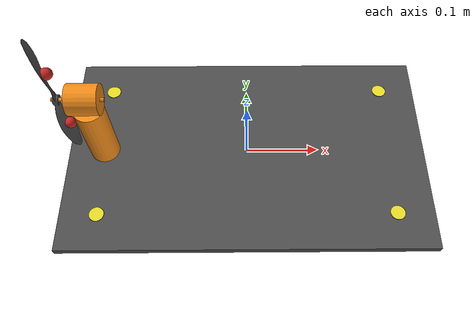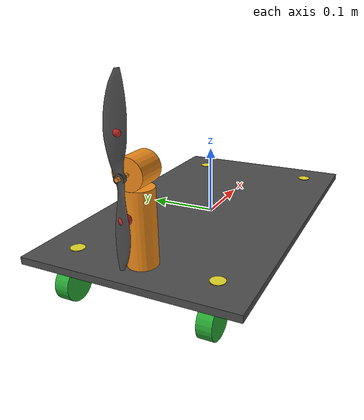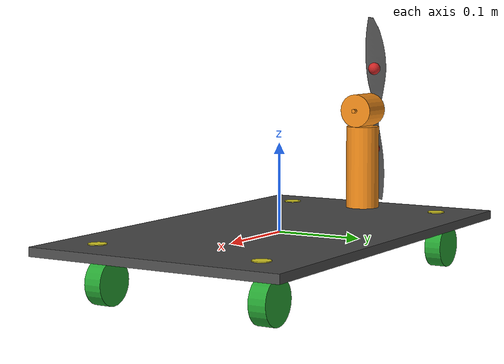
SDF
<sdf version='1.7'>
  <model name='dolly'>
    <link name='base_link'>
      <inertial>
        <pose>0 0 0 0 -0 0</pose>
        <mass>1</mass>
        <inertia>
          <ixx>0.00750833</ixx>
          <ixy>0</ixy>
          <ixz>0</ixz>
          <iyy>0.0208417</iyy>
          <iyz>0</iyz>
          <izz>0.0283333</izz>
        </inertia>
      </inertial>
      <collision name='base_link_collision'>
        <pose>0 0 0 0 -0 0</pose>
        <geometry>
          <box>
            <size>0.5 0.3 0.01</size>
          </box>
        </geometry>
        <surface>
          <friction>
            <ode>
              <mu2>1.0</mu2>
              <mu1>1.0</mu1>
            </ode>
          </friction>
          <contact>
            <ode/>
          </contact>
        </surface>
      </collision>
      <visual name='base_link_visual'>
        <pose>0 0 0 0 -0 0</pose>
        <geometry>
          <box>
            <size>0.5 0.3 0.01</size>
          </box>
        </geometry>
        <material>
          <script>
            <name>Gazebo/DarkGray</name>
            <uri>file://media/materials/scripts/gazebo.material</uri>
          </script>
        </material>
      </visual>
      <gravity>1</gravity>
      <velocity_decay/>
    </link>
    <joint name='back_left_castor_joint' type='revolute'>
      <pose relative_to='base_link'>-0.2 0.1 0 0 -0 0</pose>
      <parent>base_link</parent>
      <child>back_left_castor_link</child>
      <axis>
        <xyz>0 0 1</xyz>
        <limit>
          <lower>-1e+16</lower>
          <upper>1e+16</upper>
        </limit>
        <dynamics>
          <damping>0.0001</damping>
          <friction>0.0001</friction>
          <spring_reference>0</spring_reference>
          <spring_stiffness>0</spring_stiffness>
        </dynamics>
      </axis>
      <physics>
        <ode>
          <limit>
            <cfm>0</cfm>
            <erp>0.2</erp>
          </limit>
        </ode>
      </physics>
    </joint>
    <link name='back_left_castor_link'>
      <pose relative_to='back_left_castor_joint'>0 0 0 0 -0 0</pose>
      <inertial>
        <pose>0 0 0 0 -0 0</pose>
        <mass>0.05</mass>
        <inertia>
          <ixx>1.85e-06</ixx>
          <ixy>0</ixy>
          <ixz>0</ixz>
          <iyy>1.85e-06</iyy>
          <iyz>0</iyz>
          <izz>2.5e-06</izz>
        </inertia>
      </inertial>
      <collision name='back_left_castor_link_collision'>
        <pose>0 0 0 0 -0 0</pose>
        <geometry>
          <cylinder>
            <length>0.012</length>
            <radius>0.01</radius>
          </cylinder>
        </geometry>
        <surface>
          <friction>
            <ode>
              <mu2>1.0</mu2>
              <mu1>1.0</mu1>
            </ode>
          </friction>
          <contact>
            <ode/>
          </contact>
        </surface>
      </collision>
      <visual name='back_left_castor_link_visual'>
        <pose>0 0 0 0 -0 0</pose>
        <geometry>
          <cylinder>
            <length>0.012</length>
            <radius>0.01</radius>
          </cylinder>
        </geometry>
        <material>
          <script>
            <name>Gazebo/Yellow</name>
            <uri>file://media/materials/scripts/gazebo.material</uri>
          </script>
        </material>
      </visual>
      <gravity>1</gravity>
      <velocity_decay/>
    </link>
    <joint name='back_left_wheel_joint' type='revolute'>
      <pose relative_to='back_left_castor_link'>-0.015 0 -0.037 -1.5708 0 0</pose>
      <parent>back_left_castor_link</parent>
      <child>back_left_castor_wheel_link</child>
      <axis>
        <xyz>0 0 1</xyz>
        <limit>
          <lower>-1e+16</lower>
          <upper>1e+16</upper>
        </limit>
        <dynamics>
          <damping>0.0001</damping>
          <friction>0.03</friction>
          <spring_reference>0</spring_reference>
          <spring_stiffness>0</spring_stiffness>
        </dynamics>
      </axis>
      <physics>
        <ode>
          <limit>
            <cfm>0</cfm>
            <erp>0.2</erp>
          </limit>
        </ode>
      </physics>
    </joint>
    <link name='back_left_castor_wheel_link'>
      <pose relative_to='back_left_wheel_joint'>0 0 0 0 -0 0</pose>
      <inertial>
        <pose>0 0 0 0 -0 0</pose>
        <mass>0.1</mass>
        <inertia>
          <ixx>1.89583e-05</ixx>
          <ixy>0</ixy>
          <ixz>0</ixz>
          <iyy>1.89583e-05</iyy>
          <iyz>0</iyz>
          <izz>3.125e-05</izz>
        </inertia>
      </inertial>
      <collision name='back_left_castor_wheel_link_collision'>
        <pose>0 0 0 0 -0 0</pose>
        <geometry>
          <cylinder>
            <length>0.02</length>
            <radius>0.025</radius>
          </cylinder>
        </geometry>
        <surface>
          <friction>
            <ode>
              <mu2>1.0</mu2>
              <mu1>1.0</mu1>
            </ode>
          </friction>
          <contact>
            <ode/>
          </contact>
        </surface>
      </collision>
      <visual name='back_left_castor_wheel_link_visual'>
        <pose>0 0 0 0 -0 0</pose>
        <geometry>
          <cylinder>
            <length>0.02</length>
            <radius>0.025</radius>
          </cylinder>
        </geometry>
        <material>
          <script>
            <name>Gazebo/Green</name>
            <uri>file://media/materials/scripts/gazebo.material</uri>
          </script>
        </material>
      </visual>
      <gravity>1</gravity>
      <velocity_decay/>
    </link>
    <joint name='back_right_castor_joint' type='revolute'>
      <pose relative_to='base_link'>-0.2 -0.1 0 0 -0 0</pose>
      <parent>base_link</parent>
      <child>back_right_castor_link</child>
      <axis>
        <xyz>0 0 1</xyz>
        <limit>
          <lower>-1e+16</lower>
          <upper>1e+16</upper>
        </limit>
        <dynamics>
          <damping>0.0001</damping>
          <friction>0.0001</friction>
          <spring_reference>0</spring_reference>
          <spring_stiffness>0</spring_stiffness>
        </dynamics>
      </axis>
      <physics>
        <ode>
          <limit>
            <cfm>0</cfm>
            <erp>0.2</erp>
          </limit>
        </ode>
      </physics>
    </joint>
    <link name='back_right_castor_link'>
      <pose relative_to='back_right_castor_joint'>0 0 0 0 -0 0</pose>
      <inertial>
        <pose>0 0 0 0 -0 0</pose>
        <mass>0.05</mass>
        <inertia>
          <ixx>1.85e-06</ixx>
          <ixy>0</ixy>
          <ixz>0</ixz>
          <iyy>1.85e-06</iyy>
          <iyz>0</iyz>
          <izz>2.5e-06</izz>
        </inertia>
      </inertial>
      <collision name='back_right_castor_link_collision'>
        <pose>0 0 0 0 -0 0</pose>
        <geometry>
          <cylinder>
            <length>0.012</length>
            <radius>0.01</radius>
          </cylinder>
        </geometry>
        <surface>
          <friction>
            <ode>
              <mu2>1.0</mu2>
              <mu1>1.0</mu1>
            </ode>
          </friction>
          <contact>
            <ode/>
          </contact>
        </surface>
      </collision>
      <visual name='back_right_castor_link_visual'>
        <pose>0 0 0 0 -0 0</pose>
        <geometry>
          <cylinder>
            <length>0.012</length>
            <radius>0.01</radius>
          </cylinder>
        </geometry>
        <material>
          <script>
            <name>Gazebo/Yellow</name>
            <uri>file://media/materials/scripts/gazebo.material</uri>
          </script>
        </material>
      </visual>
      <gravity>1</gravity>
      <velocity_decay/>
    </link>
    <joint name='back_right_wheel_joint' type='revolute'>
      <pose relative_to='back_right_castor_link'>-0.015 0 -0.037 -1.5708 0 0</pose>
      <parent>back_right_castor_link</parent>
      <child>back_right_castor_wheel_link</child>
      <axis>
        <xyz>0 0 1</xyz>
        <limit>
          <lower>-1e+16</lower>
          <upper>1e+16</upper>
        </limit>
        <dynamics>
          <damping>0.0001</damping>
          <friction>0.03</friction>
          <spring_reference>0</spring_reference>
          <spring_stiffness>0</spring_stiffness>
        </dynamics>
      </axis>
      <physics>
        <ode>
          <limit>
            <cfm>0</cfm>
            <erp>0.2</erp>
          </limit>
        </ode>
      </physics>
    </joint>
    <link name='back_right_castor_wheel_link'>
      <pose relative_to='back_right_wheel_joint'>0 0 0 0 -0 0</pose>
      <inertial>
        <pose>0 0 0 0 -0 0</pose>
        <mass>0.1</mass>
        <inertia>
          <ixx>1.89583e-05</ixx>
          <ixy>0</ixy>
          <ixz>0</ixz>
          <iyy>1.89583e-05</iyy>
          <iyz>0</iyz>
          <izz>3.125e-05</izz>
        </inertia>
      </inertial>
      <collision name='back_right_castor_wheel_link_collision'>
        <pose>0 0 0 0 -0 0</pose>
        <geometry>
          <cylinder>
            <length>0.02</length>
            <radius>0.025</radius>
          </cylinder>
        </geometry>
        <surface>
          <friction>
            <ode>
              <mu2>1.0</mu2>
              <mu1>1.0</mu1>
            </ode>
          </friction>
          <contact>
            <ode/>
          </contact>
        </surface>
      </collision>
      <visual name='back_right_castor_wheel_link_visual'>
        <pose>0 0 0 0 -0 0</pose>
        <geometry>
          <cylinder>
            <length>0.02</length>
            <radius>0.025</radius>
          </cylinder>
        </geometry>
        <material>
          <script>
            <name>Gazebo/Green</name>
            <uri>file://media/materials/scripts/gazebo.material</uri>
          </script>
        </material>
      </visual>
      <gravity>1</gravity>
      <velocity_decay/>
    </link>
    <joint name='back_steer_rotor_joint' type='revolute'>
      <pose relative_to='base_link'>-0.2 0 0.055 0 -0 0</pose>
      <parent>base_link</parent>
      <child>back_steer_rotor_link</child>
      <axis>
        <xyz>0 0 1</xyz>
        <limit>
          <lower>-3.14159</lower>
          <upper>3.14159</upper>
          <effort>50</effort>
          <velocity>5</velocity>
        </limit>
        <dynamics>
          <damping>0.0001</damping>
          <friction>0.0001</friction>
          <spring_reference>0</spring_reference>
          <spring_stiffness>0</spring_stiffness>
        </dynamics>
      </axis>
      <physics>
        <ode>
          <limit>
            <cfm>0</cfm>
            <erp>0.2</erp>
          </limit>
        </ode>
      </physics>
    </joint>
    <link name='back_steer_rotor_link'>
      <pose relative_to='back_steer_rotor_joint'>0 0 0 0 -0 0</pose>
      <inertial>
        <pose>0 0 0 0 -0 0</pose>
        <mass>0.1</mass>
        <inertia>
          <ixx>9.33333e-05</ixx>
          <ixy>0</ixy>
          <ixz>0</ixz>
          <iyy>9.33333e-05</iyy>
          <iyz>0</iyz>
          <izz>2e-05</izz>
        </inertia>
      </inertial>
      <collision name='back_steer_rotor_link_collision'>
        <pose>0 0 0 0 -0 0</pose>
        <geometry>
          <cylinder>
            <length>0.1</length>
            <radius>0.02</radius>
          </cylinder>
        </geometry>
        <surface>
          <friction>
            <ode>
              <mu2>1.0</mu2>
              <mu1>1.0</mu1>
            </ode>
          </friction>
          <contact>
            <ode/>
          </contact>
        </surface>
      </collision>
      <visual name='back_steer_rotor_link_visual'>
        <pose>0 0 0 0 -0 0</pose>
        <geometry>
          <cylinder>
            <length>0.1</length>
            <radius>0.02</radius>
          </cylinder>
        </geometry>
        <material>
          <script>
            <name>Gazebo/Orange</name>
            <uri>file://media/materials/scripts/gazebo.material</uri>
          </script>
        </material>
      </visual>
      <gravity>1</gravity>
      <velocity_decay/>
    </link>
    <joint name='back_motor_joint' type='revolute'>
      <pose relative_to='back_steer_rotor_link'>0 0 0.07 0 -1.5708 0</pose>
      <parent>back_steer_rotor_link</parent>
      <child>back_motor_link</child>
      <axis>
        <xyz>0 0 1</xyz>
        <limit>
          <lower>-1e+16</lower>
          <upper>1e+16</upper>
        </limit>
        <dynamics>
          <damping>0.0001</damping>
          <friction>0.0001</friction>
          <spring_reference>0</spring_reference>
          <spring_stiffness>0</spring_stiffness>
        </dynamics>
      </axis>
      <physics>
        <ode>
          <limit>
            <cfm>0</cfm>
            <erp>0.2</erp>
          </limit>
        </ode>
      </physics>
      <sensor name='force_torque_sensor' type='force_torque'>
        <always_on>1</always_on>
        <update_rate>30</update_rate>
        <visualize>1</visualize>
      </sensor>
    </joint>
    <link name='back_motor_link'>
      <pose relative_to='back_motor_joint'>0 0 0 0 -0 0</pose>
      <inertial>
        <pose>0 0 0.004286 0 -0 0</pose>
        <mass>0.07</mass>
        <inertia>
          <ixx>2.18393e-05</ixx>
          <ixy>0</ixy>
          <ixz>-2.03725e-21</ixz>
          <iyy>5.51101e-05</iyy>
          <iyz>0</iyz>
          <izz>4.53958e-05</izz>
        </inertia>
      </inertial>
      <collision name='back_motor_link_collision'>
        <pose>0 0 0 0 -0 0</pose>
        <geometry>
          <cylinder>
            <length>0.04</length>
            <radius>0.02</radius>
          </cylinder>
        </geometry>
        <surface>
          <friction>
            <ode>
              <mu2>1.0</mu2>
              <mu1>1.0</mu1>
            </ode>
          </friction>
          <contact>
            <ode/>
          </contact>
        </surface>
      </collision>
      <collision name='back_motor_link_fixed_joint_lump__back_prop_link_collision_1'>
        <pose>0 0 0.03 0 1.5708 0</pose>
        <geometry>
          <cylinder>
            <length>0.2</length>
            <radius>0.005</radius>
          </cylinder>
        </geometry>
        <surface>
          <friction>
            <ode>
              <mu2>1.0</mu2>
              <mu1>1.0</mu1>
            </ode>
          </friction>
          <contact>
            <ode/>
          </contact>
        </surface>
      </collision>
      <visual name='back_motor_link_visual'>
        <pose>0 0 0 0 -0 0</pose>
        <geometry>
          <cylinder>
            <length>0.04</length>
            <radius>0.02</radius>
          </cylinder>
        </geometry>
        <material>
          <script>
            <name>Gazebo/Orange</name>
            <uri>file://media/materials/scripts/gazebo.material</uri>
          </script>
        </material>
      </visual>
      <visual name='back_motor_link_fixed_joint_lump__back_motor_axle_link_visual_1'>
        <pose>0 0 0.0075 0 -0 0</pose>
        <geometry>
          <cylinder>
            <length>0.065</length>
            <radius>0.0025</radius>
          </cylinder>
        </geometry>
        <material>
          <script>
            <name>Gazebo/Orange</name>
            <uri>file://media/materials/scripts/gazebo.material</uri>
          </script>
        </material>
      </visual>
      <visual name='back_motor_link_fixed_joint_lump__back_prop_link_visual_2'>
        <pose>0 0 0.03 0 -0 0.174533</pose>
        <geometry>
          <mesh>
            <scale>1 1 1</scale>
            <uri>model://dolly/meshes/propeller_9x4.7.stl</uri>
          </mesh>
        </geometry>
        <material>
          <script>
            <name>Gazebo/DarkGray</name>
            <uri>file://media/materials/scripts/gazebo.material</uri>
          </script>
        </material>
      </visual>
      <visual name='back_motor_link_fixed_joint_lump__back_prop_cp1_link_visual_3'>
        <pose>0.05 0 0.03 0 -0 0</pose>
        <geometry>
          <sphere>
            <radius>0.0075</radius>
          </sphere>
        </geometry>
        <material>
          <script>
            <name>Gazebo/Red</name>
            <uri>file://media/materials/scripts/gazebo.material</uri>
          </script>
        </material>
      </visual>
      <visual name='back_motor_link_fixed_joint_lump__back_prop_cp2_link_visual_4'>
        <pose>-0.05 0 0.03 0 -0 0</pose>
        <geometry>
          <sphere>
            <radius>0.0075</radius>
          </sphere>
        </geometry>
        <material>
          <script>
            <name>Gazebo/Red</name>
            <uri>file://media/materials/scripts/gazebo.material</uri>
          </script>
        </material>
      </visual>
      <velocity_decay/>
      <velocity_decay/>
      <velocity_decay/>
      <velocity_decay/>
      <gravity>1</gravity>
      <velocity_decay/>
    </link>
    <joint name='front_left_castor_joint' type='revolute'>
      <pose relative_to='base_link'>0.2 0.1 0 0 -0 0</pose>
      <parent>base_link</parent>
      <child>front_left_castor_link</child>
      <axis>
        <xyz>0 0 1</xyz>
        <limit>
          <lower>-1e+16</lower>
          <upper>1e+16</upper>
        </limit>
        <dynamics>
          <damping>0.0001</damping>
          <friction>0.0001</friction>
          <spring_reference>0</spring_reference>
          <spring_stiffness>0</spring_stiffness>
        </dynamics>
      </axis>
      <physics>
        <ode>
          <limit>
            <cfm>0</cfm>
            <erp>0.2</erp>
          </limit>
        </ode>
      </physics>
    </joint>
    <link name='front_left_castor_link'>
      <pose relative_to='front_left_castor_joint'>0 0 0 0 -0 0</pose>
      <inertial>
        <pose>0 0 0 0 -0 0</pose>
        <mass>0.05</mass>
        <inertia>
          <ixx>1.85e-06</ixx>
          <ixy>0</ixy>
          <ixz>0</ixz>
          <iyy>1.85e-06</iyy>
          <iyz>0</iyz>
          <izz>2.5e-06</izz>
        </inertia>
      </inertial>
      <collision name='front_left_castor_link_collision'>
        <pose>0 0 0 0 -0 0</pose>
        <geometry>
          <cylinder>
            <length>0.012</length>
            <radius>0.01</radius>
          </cylinder>
        </geometry>
        <surface>
          <friction>
            <ode>
              <mu2>1.0</mu2>
              <mu1>1.0</mu1>
            </ode>
          </friction>
          <contact>
            <ode/>
          </contact>
        </surface>
      </collision>
      <visual name='front_left_castor_link_visual'>
        <pose>0 0 0 0 -0 0</pose>
        <geometry>
          <cylinder>
            <length>0.012</length>
            <radius>0.01</radius>
          </cylinder>
        </geometry>
        <material>
          <script>
            <name>Gazebo/Yellow</name>
            <uri>file://media/materials/scripts/gazebo.material</uri>
          </script>
        </material>
      </visual>
      <gravity>1</gravity>
      <velocity_decay/>
    </link>
    <joint name='front_left_wheel_joint' type='revolute'>
      <pose relative_to='front_left_castor_link'>-0.015 0 -0.037 -1.5708 0 0</pose>
      <parent>front_left_castor_link</parent>
      <child>front_left_castor_wheel_link</child>
      <axis>
        <xyz>0 0 1</xyz>
        <limit>
          <lower>-1e+16</lower>
          <upper>1e+16</upper>
        </limit>
        <dynamics>
          <damping>0.0001</damping>
          <friction>0.03</friction>
          <spring_reference>0</spring_reference>
          <spring_stiffness>0</spring_stiffness>
        </dynamics>
      </axis>
      <physics>
        <ode>
          <limit>
            <cfm>0</cfm>
            <erp>0.2</erp>
          </limit>
        </ode>
      </physics>
    </joint>
    <link name='front_left_castor_wheel_link'>
      <pose relative_to='front_left_wheel_joint'>0 0 0 0 -0 0</pose>
      <inertial>
        <pose>0 0 0 0 -0 0</pose>
        <mass>0.1</mass>
        <inertia>
          <ixx>1.89583e-05</ixx>
          <ixy>0</ixy>
          <ixz>0</ixz>
          <iyy>1.89583e-05</iyy>
          <iyz>0</iyz>
          <izz>3.125e-05</izz>
        </inertia>
      </inertial>
      <collision name='front_left_castor_wheel_link_collision'>
        <pose>0 0 0 0 -0 0</pose>
        <geometry>
          <cylinder>
            <length>0.02</length>
            <radius>0.025</radius>
          </cylinder>
        </geometry>
        <surface>
          <friction>
            <ode>
              <mu2>1.0</mu2>
              <mu1>1.0</mu1>
            </ode>
          </friction>
          <contact>
            <ode/>
          </contact>
        </surface>
      </collision>
      <visual name='front_left_castor_wheel_link_visual'>
        <pose>0 0 0 0 -0 0</pose>
        <geometry>
          <cylinder>
            <length>0.02</length>
            <radius>0.025</radius>
          </cylinder>
        </geometry>
        <material>
          <script>
            <name>Gazebo/Green</name>
            <uri>file://media/materials/scripts/gazebo.material</uri>
          </script>
        </material>
      </visual>
      <gravity>1</gravity>
      <velocity_decay/>
    </link>
    <joint name='front_right_castor_joint' type='revolute'>
      <pose relative_to='base_link'>0.2 -0.1 0 0 -0 0</pose>
      <parent>base_link</parent>
      <child>front_right_castor_link</child>
      <axis>
        <xyz>0 0 1</xyz>
        <limit>
          <lower>-1e+16</lower>
          <upper>1e+16</upper>
        </limit>
        <dynamics>
          <damping>0.0001</damping>
          <friction>0.0001</friction>
          <spring_reference>0</spring_reference>
          <spring_stiffness>0</spring_stiffness>
        </dynamics>
      </axis>
      <physics>
        <ode>
          <limit>
            <cfm>0</cfm>
            <erp>0.2</erp>
          </limit>
        </ode>
      </physics>
    </joint>
    <link name='front_right_castor_link'>
      <pose relative_to='front_right_castor_joint'>0 0 0 0 -0 0</pose>
      <inertial>
        <pose>0 0 0 0 -0 0</pose>
        <mass>0.05</mass>
        <inertia>
          <ixx>1.85e-06</ixx>
          <ixy>0</ixy>
          <ixz>0</ixz>
          <iyy>1.85e-06</iyy>
          <iyz>0</iyz>
          <izz>2.5e-06</izz>
        </inertia>
      </inertial>
      <collision name='front_right_castor_link_collision'>
        <pose>0 0 0 0 -0 0</pose>
        <geometry>
          <cylinder>
            <length>0.012</length>
            <radius>0.01</radius>
          </cylinder>
        </geometry>
        <surface>
          <friction>
            <ode>
              <mu2>1.0</mu2>
              <mu1>1.0</mu1>
            </ode>
          </friction>
          <contact>
            <ode/>
          </contact>
        </surface>
      </collision>
      <visual name='front_right_castor_link_visual'>
        <pose>0 0 0 0 -0 0</pose>
        <geometry>
          <cylinder>
            <length>0.012</length>
            <radius>0.01</radius>
          </cylinder>
        </geometry>
        <material>
          <script>
            <name>Gazebo/Yellow</name>
            <uri>file://media/materials/scripts/gazebo.material</uri>
          </script>
        </material>
      </visual>
      <gravity>1</gravity>
      <velocity_decay/>
    </link>
    <joint name='front_right_wheel_joint' type='revolute'>
      <pose relative_to='front_right_castor_link'>-0.015 0 -0.037 -1.5708 0 0</pose>
      <parent>front_right_castor_link</parent>
      <child>front_right_castor_wheel_link</child>
      <axis>
        <xyz>0 0 1</xyz>
        <limit>
          <lower>-1e+16</lower>
          <upper>1e+16</upper>
        </limit>
        <dynamics>
          <damping>0.0001</damping>
          <friction>0.03</friction>
          <spring_reference>0</spring_reference>
          <spring_stiffness>0</spring_stiffness>
        </dynamics>
      </axis>
      <physics>
        <ode>
          <limit>
            <cfm>0</cfm>
            <erp>0.2</erp>
          </limit>
        </ode>
      </physics>
    </joint>
    <link name='front_right_castor_wheel_link'>
      <pose relative_to='front_right_wheel_joint'>0 0 0 0 -0 0</pose>
      <inertial>
        <pose>0 0 0 0 -0 0</pose>
        <mass>0.1</mass>
        <inertia>
          <ixx>1.89583e-05</ixx>
          <ixy>0</ixy>
          <ixz>0</ixz>
          <iyy>1.89583e-05</iyy>
          <iyz>0</iyz>
          <izz>3.125e-05</izz>
        </inertia>
      </inertial>
      <collision name='front_right_castor_wheel_link_collision'>
        <pose>0 0 0 0 -0 0</pose>
        <geometry>
          <cylinder>
            <length>0.02</length>
            <radius>0.025</radius>
          </cylinder>
        </geometry>
        <surface>
          <friction>
            <ode>
              <mu2>1.0</mu2>
              <mu1>1.0</mu1>
            </ode>
          </friction>
          <contact>
            <ode/>
          </contact>
        </surface>
      </collision>
      <visual name='front_right_castor_wheel_link_visual'>
        <pose>0 0 0 0 -0 0</pose>
        <geometry>
          <cylinder>
            <length>0.02</length>
            <radius>0.025</radius>
          </cylinder>
        </geometry>
        <material>
          <script>
            <name>Gazebo/Green</name>
            <uri>file://media/materials/scripts/gazebo.material</uri>
          </script>
        </material>
      </visual>
      <gravity>1</gravity>
      <velocity_decay/>
    </link>
  </model>
</sdf>
